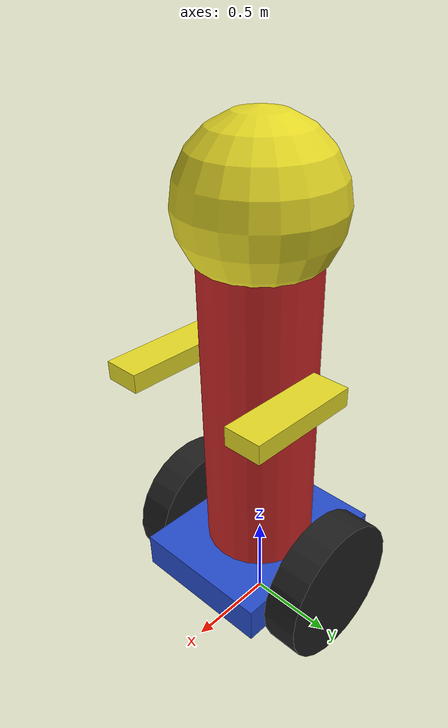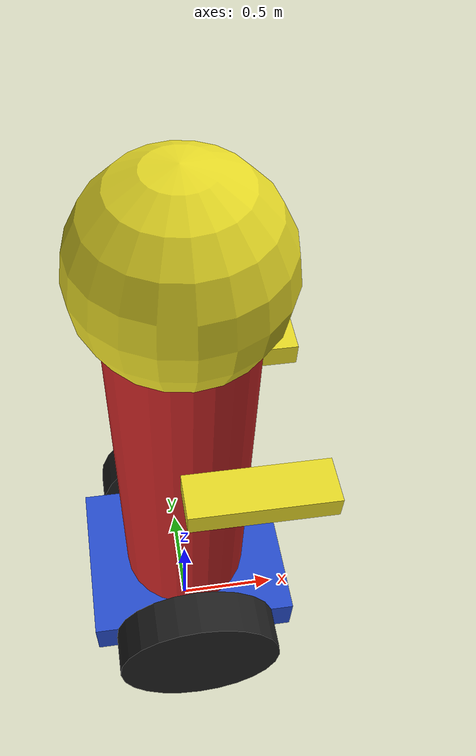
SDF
<sdf version='1.4'>
  <model name='robot_hanchenhao'>
    <link name='base'>
      <pose>0 0 0 0 -0 0</pose>
      <inertial>
        <pose>-0.2 0 0.525 0 -0 0</pose>
        <mass>4</mass>
        <inertia>
          <ixx>5.0675</ixx>
          <ixy>0</ixy>
          <ixz>-0.3</ixz>
          <iyy>5.2275</iyy>
          <iyz>0</iyz>
          <izz>4.16</izz>
        </inertia>
      </inertial>
      <collision name='base_collision_base_link'>
        <pose>0 0 0.4 0 -0 0</pose>
        <geometry>
          <box>
            <size>1 0.8 0.2</size>
          </box>
        </geometry>
        <surface>
          <contact>
            <ode/>
          </contact>
          <friction>
            <ode/>
          </friction>
        </surface>
      </collision>
      <collision name='base_collision_body_link'>
        <pose>0 0 1.4 0 -0 0</pose>
        <geometry>
          <cylinder>
            <length>1.8</length>
            <radius>0.3</radius>
          </cylinder>
        </geometry>
        <surface>
          <contact>
            <ode/>
          </contact>
          <friction>
            <ode/>
          </friction>
        </surface>
        <surface>
          <contact>
            <ode/>
          </contact>
          <friction>
            <ode/>
          </friction>
        </surface>
      </collision>
      <collision name='base_collision_caster_base_link'>
        <pose>-0.4 0 0.2 0 -0 0</pose>
        <geometry>
          <cylinder>
            <length>0.2</length>
            <radius>0.05</radius>
          </cylinder>
        </geometry>
        <surface>
          <contact>
            <ode/>
          </contact>
          <friction>
            <ode/>
          </friction>
        </surface>
      </collision>
      <collision name='base_collision_caster_link'>
        <pose>-0.4 0 0.1 0 -0 0</pose>
        <geometry>
          <sphere>
            <radius>0.1</radius>
          </sphere>
        </geometry>
        <surface>
          <contact>
            <ode/>
          </contact>
          <friction>
            <ode/>
          </friction>
        </surface>
        <surface>
          <contact>
            <ode/>
          </contact>
          <friction>
            <ode/>
          </friction>
        </surface>
        <surface>
          <contact>
            <ode/>
          </contact>
          <friction>
            <ode/>
          </friction>
        </surface>
      </collision>
      <visual name='base_visual_base_link'>
        <pose>0 0 0.4 0 -0 0</pose>
        <geometry>
          <box>
            <size>1 0.8 0.2</size>
          </box>
        </geometry>
        <material>
          <script>
            <name>Gazebo/Blue</name>
            <uri>__default__</uri>
          </script>
        </material>
      </visual>
      <visual name='base_visual_body_link'>
        <pose>0 0 1.4 0 -0 0</pose>
        <geometry>
          <cylinder>
            <length>1.8</length>
            <radius>0.3</radius>
          </cylinder>
        </geometry>
        <material>
          <script>
            <name>Gazebo/Red</name>
            <uri>__default__</uri>
          </script>
        </material>
      </visual>
      <visual name='base_visual_caster_base_link'>
        <pose>-0.4 0 0.2 0 -0 0</pose>
        <geometry>
          <cylinder>
            <length>0.2</length>
            <radius>0.05</radius>
          </cylinder>
        </geometry>
        <material>
          <script>
            <name>Gazebo/Blue</name>
            <uri>__default__</uri>
          </script>
        </material>
      </visual>
      <visual name='base_visual_caster_link'>
        <pose>-0.4 0 0.1 0 -0 0</pose>
        <geometry>
          <sphere>
            <radius>0.1</radius>
          </sphere>
        </geometry>
        <material>
          <script>
            <name>Gazebo/Black</name>
            <uri>__default__</uri>
          </script>
        </material>
        <material>
          <script>
            <name>Gazebo/Blue</name>
            <uri>__default__</uri>
          </script>
        </material>
      </visual>
      <velocity_decay>
        <linear>0</linear>
        <angular>0</angular>
      </velocity_decay>
      <velocity_decay>
        <linear>0</linear>
        <angular>0</angular>
      </velocity_decay>
      <velocity_decay>
        <linear>0</linear>
        <angular>0</angular>
      </velocity_decay>
      <velocity_decay>
        <linear>0</linear>
        <angular>0</angular>
      </velocity_decay>
      <velocity_decay>
        <linear>0</linear>
        <angular>0</angular>
      </velocity_decay>
      <velocity_decay>
        <linear>0</linear>
        <angular>0</angular>
      </velocity_decay>
      <gravity>1</gravity>
      <velocity_decay>
        <linear>0</linear>
        <angular>0</angular>
      </velocity_decay>
      <self_collide>0</self_collide>
    </link>
    <link name='head_link'>
      <pose>0 0 2.4 0 -0 0</pose>
      <inertial>
        <pose>0 0 0 0 -0 0</pose>
        <mass>1</mass>
        <inertia>
          <ixx>1</ixx>
          <ixy>0</ixy>
          <ixz>0</ixz>
          <iyy>1</iyy>
          <iyz>0</iyz>
          <izz>1</izz>
        </inertia>
      </inertial>
      <collision name='head_link_collision'>
        <pose>0 0 0 0 -0 0</pose>
        <geometry>
          <sphere>
            <radius>0.4</radius>
          </sphere>
        </geometry>
        <surface>
          <contact>
            <ode/>
          </contact>
          <friction>
            <ode/>
          </friction>
        </surface>
        <surface>
          <contact>
            <ode/>
          </contact>
          <friction>
            <ode/>
          </friction>
        </surface>
      </collision>
      <visual name='head_link_visual'>
        <pose>0 0 0 0 -0 0</pose>
        <geometry>
          <sphere>
            <radius>0.4</radius>
          </sphere>
        </geometry>
        <material>
          <script>
            <name>Gazebo/Yellow</name>
            <uri>__default__</uri>
          </script>
        </material>
      </visual>
      <velocity_decay>
        <linear>0</linear>
        <angular>0</angular>
      </velocity_decay>
      <gravity>1</gravity>
      <velocity_decay>
        <linear>0</linear>
        <angular>0</angular>
      </velocity_decay>
      <self_collide>0</self_collide>
    </link>
    <joint name='joint_head' type='prismatic'>
      <child>head_link</child>
      <parent>base</parent>
      <axis>
        <xyz>0 0 1</xyz>
        <limit>
          <lower>-0.1</lower>
          <upper>0.1</upper>
          <effort>10</effort>
          <velocity>10</velocity>
        </limit>
        <dynamics>
          <damping>0.7</damping>
        </dynamics>
      </axis>
    </joint>
    <link name='hand_left_link'>
      <pose>0 0.5 1.6 0 -0 0</pose>
      <inertial>
        <pose>0.25 -0.1 0 0 1.57 0</pose>
        <mass>1</mass>
        <inertia>
          <ixx>1</ixx>
          <ixy>0</ixy>
          <ixz>0</ixz>
          <iyy>1</iyy>
          <iyz>0</iyz>
          <izz>1</izz>
        </inertia>
      </inertial>
      <collision name='hand_left_link_collision'>
        <pose>0.25 -0.1 0 0 1.57 0</pose>
        <geometry>
          <box>
            <size>0.1 0.2 0.6</size>
          </box>
        </geometry>
        <surface>
          <contact>
            <ode/>
          </contact>
          <friction>
            <ode/>
          </friction>
        </surface>
      </collision>
      <visual name='hand_left_link_visual'>
        <pose>0.25 -0.1 0 0 1.57 0</pose>
        <geometry>
          <box>
            <size>0.1 0.2 0.6</size>
          </box>
        </geometry>
        <material>
          <script>
            <name>Gazebo/Yellow</name>
            <uri>__default__</uri>
          </script>
        </material>
      </visual>
      <gravity>1</gravity>
      <velocity_decay>
        <linear>0</linear>
        <angular>0</angular>
      </velocity_decay>
      <self_collide>0</self_collide>
    </link>
    <joint name='joint_left_hand' type='revolute'>
      <child>hand_left_link</child>
      <parent>base</parent>
      <axis>
        <xyz>0 1 0</xyz>
        <limit>
          <lower>-1e+16</lower>
          <upper>1e+16</upper>
        </limit>
        <dynamics>
          <damping>0.7</damping>
        </dynamics>
      </axis>
    </joint>
    <link name='hand_right_link'>
      <pose>0 -0.5 1.6 0 -0 0</pose>
      <inertial>
        <pose>0.25 0.1 0 0 1.57 0</pose>
        <mass>1</mass>
        <inertia>
          <ixx>1</ixx>
          <ixy>0</ixy>
          <ixz>0</ixz>
          <iyy>1</iyy>
          <iyz>0</iyz>
          <izz>1</izz>
        </inertia>
      </inertial>
      <collision name='hand_right_link_collision'>
        <pose>0.25 0.1 0 0 1.57 0</pose>
        <geometry>
          <box>
            <size>0.1 0.2 0.6</size>
          </box>
        </geometry>
        <surface>
          <contact>
            <ode/>
          </contact>
          <friction>
            <ode/>
          </friction>
        </surface>
      </collision>
      <visual name='hand_right_link_visual'>
        <pose>0.25 0.1 0 0 1.57 0</pose>
        <geometry>
          <box>
            <size>0.1 0.2 0.6</size>
          </box>
        </geometry>
        <material>
          <script>
            <name>Gazebo/Yellow</name>
            <uri>__default__</uri>
          </script>
        </material>
      </visual>
      <gravity>1</gravity>
      <velocity_decay>
        <linear>0</linear>
        <angular>0</angular>
      </velocity_decay>
      <self_collide>0</self_collide>
    </link>
    <joint name='joint_right_hand' type='revolute'>
      <child>hand_right_link</child>
      <parent>base</parent>
      <axis>
        <xyz>0 -1 0</xyz>
        <limit>
          <lower>-1e+16</lower>
          <upper>1e+16</upper>
        </limit>
        <dynamics>
          <damping>0.7</damping>
        </dynamics>
      </axis>
    </joint>
    <link name='wheel_left_link'>
      <pose>0 0.5 0.4 0 -0 0</pose>
      <inertial>
        <pose>0 0 0 1.57 -0 0</pose>
        <mass>1</mass>
        <inertia>
          <ixx>1</ixx>
          <ixy>0</ixy>
          <ixz>0</ixz>
          <iyy>1</iyy>
          <iyz>0</iyz>
          <izz>1</izz>
        </inertia>
      </inertial>
      <collision name='wheel_left_link_collision'>
        <pose>0 0 0 1.57 -0 0</pose>
        <geometry>
          <cylinder>
            <length>0.2</length>
            <radius>0.4</radius>
          </cylinder>
        </geometry>
        <surface>
          <contact>
            <ode/>
          </contact>
          <friction>
            <ode/>
          </friction>
        </surface>
      </collision>
      <visual name='wheel_left_link_visual'>
        <pose>0 0 0 1.57 -0 0</pose>
        <geometry>
          <cylinder>
            <length>0.2</length>
            <radius>0.4</radius>
          </cylinder>
        </geometry>
        <material>
          <script>
            <name>Gazebo/Black</name>
            <uri>__default__</uri>
          </script>
        </material>
      </visual>
      <gravity>1</gravity>
      <velocity_decay>
        <linear>0</linear>
        <angular>0</angular>
      </velocity_decay>
      <self_collide>0</self_collide>
    </link>
    <joint name='joint_left_wheel' type='revolute'>
      <child>wheel_left_link</child>
      <parent>base</parent>
      <axis>
        <xyz>0 1 0</xyz>
        <limit>
          <lower>-1e+16</lower>
          <upper>1e+16</upper>
        </limit>
        <dynamics>
          <damping>0.7</damping>
        </dynamics>
      </axis>
    </joint>
    <link name='wheel_right_link'>
      <pose>0 -0.5 0.4 0 -0 0</pose>
      <inertial>
        <pose>0 0 0 1.57 -0 0</pose>
        <mass>1</mass>
        <inertia>
          <ixx>1</ixx>
          <ixy>0</ixy>
          <ixz>0</ixz>
          <iyy>1</iyy>
          <iyz>0</iyz>
          <izz>1</izz>
        </inertia>
      </inertial>
      <collision name='wheel_right_link_collision'>
        <pose>0 0 0 1.57 -0 0</pose>
        <geometry>
          <cylinder>
            <length>0.2</length>
            <radius>0.4</radius>
          </cylinder>
        </geometry>
        <surface>
          <contact>
            <ode/>
          </contact>
          <friction>
            <ode/>
          </friction>
        </surface>
      </collision>
      <visual name='wheel_right_link_visual'>
        <pose>0 0 0 1.57 -0 0</pose>
        <geometry>
          <cylinder>
            <length>0.2</length>
            <radius>0.4</radius>
          </cylinder>
        </geometry>
        <material>
          <script>
            <name>Gazebo/Black</name>
            <uri>__default__</uri>
          </script>
        </material>
      </visual>
      <gravity>1</gravity>
      <velocity_decay>
        <linear>0</linear>
        <angular>0</angular>
      </velocity_decay>
      <self_collide>0</self_collide>
    </link>
    <joint name='joint_right_wheel' type='revolute'>
      <child>wheel_right_link</child>
      <parent>base</parent>
      <axis>
        <xyz>0 1 0</xyz>
        <limit>
          <lower>-1e+16</lower>
          <upper>1e+16</upper>
        </limit>
        <dynamics>
          <damping>0.7</damping>
        </dynamics>
      </axis>
    </joint>
  </model>
</sdf>
